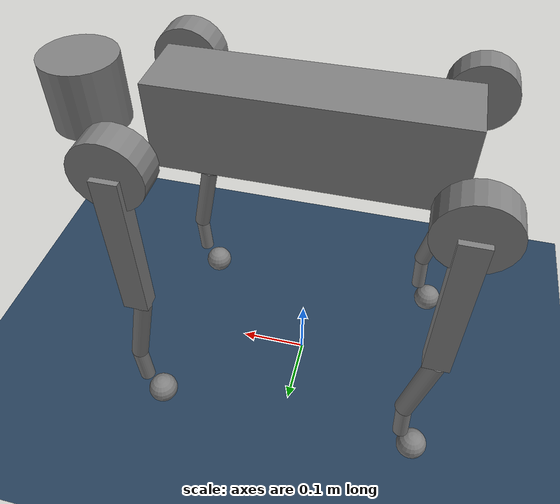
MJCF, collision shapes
<mujoco model="go2 scene">
  <include file="go2.xml"/>

  <statistic center="0 0 0.1" extent="0.8"/>

  <visual>
    <headlight diffuse="0.6 0.6 0.6" ambient="0.3 0.3 0.3" specular="0 0 0"/>
    <rgba haze="0.15 0.25 0.35 1"/>
    <global azimuth="-130" elevation="-20"/>
  </visual>

  <asset>
    <texture type="skybox" builtin="gradient" rgb1="0.3 0.5 0.7" rgb2="0 0 0" width="512" height="3072"/>
    <texture type="2d" name="groundplane" builtin="checker" mark="edge" rgb1="0.2 0.3 0.4" rgb2="0.1 0.2 0.3"
      markrgb="0.8 0.8 0.8" width="300" height="300"/>
    <material name="groundplane" texture="groundplane" texuniform="true" texrepeat="5 5" reflectance="0.2"/>
  </asset>

  <worldbody>
    <light pos="0 0 1.5" dir="0 0 -1" directional="true"/>
    <geom name="floor" size="0 0 0.05" type="plane" material="groundplane"/>
  </worldbody>

  <sensor>
    <contact name="FL_foot_contact" geom1="floor" geom2="FL" data="found" num="1" reduce="mindist"/>
    <contact name="FR_foot_contact" geom1="floor" geom2="FR" data="found" num="1" reduce="mindist"/>
    <contact name="RL_foot_contact" geom1="floor" geom2="RL" data="found" num="1" reduce="mindist"/>
    <contact name="RR_foot_contact" geom1="floor" geom2="RR" data="found" num="1" reduce="mindist"/>
    <!-- base -->
    <contact name="base1_contact" geom1="floor" geom2="base1" data="found" num="1" reduce="mindist"/>
    <contact name="base2_contact" geom1="floor" geom2="base2" data="found" num="1" reduce="mindist"/>
    <!-- hip -->
    <contact name="FL_hip_contact" geom1="floor" geom2="FL_hip_geom" data="found" num="1" reduce="mindist"/>
    <contact name="FR_hip_contact" geom1="floor" geom2="FR_hip_geom" data="found" num="1" reduce="mindist"/>
    <contact name="RL_hip_contact" geom1="floor" geom2="RL_hip_geom" data="found" num="1" reduce="mindist"/>
    <contact name="RR_hip_contact" geom1="floor" geom2="RR_hip_geom" data="found" num="1" reduce="mindist"/>
    <!-- thigh -->
    <contact name="FL_thigh_contact" geom1="floor" geom2="FL_thigh_geom" data="found" num="1" reduce="mindist"/>
    <contact name="FR_thigh_contact" geom1="floor" geom2="FR_thigh_geom" data="found" num="1" reduce="mindist"/>
    <contact name="RL_thigh_contact" geom1="floor" geom2="RL_thigh_geom" data="found" num="1" reduce="mindist"/>
    <contact name="RR_thigh_contact" geom1="floor" geom2="RR_thigh_geom" data="found" num="1" reduce="mindist"/>
    <!-- calf -->
    <contact name="FL_calf_contact1" geom1="floor" geom2="FL_calf_geom1" data="found" num="1" reduce="mindist"/>
    <contact name="FR_calf_contact1" geom1="floor" geom2="FR_calf_geom1" data="found" num="1" reduce="mindist"/>
    <contact name="RL_calf_contact1" geom1="floor" geom2="RL_calf_geom1" data="found" num="1" reduce="mindist"/>
    <contact name="RR_calf_contact1" geom1="floor" geom2="RR_calf_geom1" data="found" num="1" reduce="mindist"/>

    <contact name="FL_calf_contact2" geom1="floor" geom2="FL_calf_geom2" data="found" num="1" reduce="mindist"/>
    <contact name="FR_calf_contact2" geom1="floor" geom2="FR_calf_geom2" data="found" num="1" reduce="mindist"/>
    <contact name="RL_calf_contact2" geom1="floor" geom2="RL_calf_geom2" data="found" num="1" reduce="mindist"/>
    <contact name="RR_calf_contact2" geom1="floor" geom2="RR_calf_geom2" data="found" num="1" reduce="mindist"/>
  </sensor>

</mujoco>

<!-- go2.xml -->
<mujoco model="go2">
  <compiler angle="radian" meshdir="assets" autolimits="true"/>

  <option cone="elliptic" impratio="100" timestep="0.02"/>

  <default>
    <default class="go2">
      <geom friction="0.6" margin="0.001" condim="1"/>
      <joint axis="0 1 0" damping="0.5" armature="0.01" frictionloss="0.2"/>
      <position forcerange="-23.7 23.7" kp="35"/>
      <default class="abduction">
        <joint axis="1 0 0" range="-1.0472 1.0472"/>
      </default>
      <default class="hip">
        <default class="front_hip">
          <joint range="-1.5708 3.4907"/>
        </default>
        <default class="back_hip">
          <joint range="-0.5236 4.5379"/>
        </default>
      </default>
      <default class="knee">
        <joint range="-2.7227 -0.83776"/>
        <position forcerange="-45.43 45.43"/>
      </default>
      <default class="visual">
        <geom type="mesh" contype="0" conaffinity="0" group="2"/>
      </default>
      <default class="collision">
        <geom group="3"  contype="1" conaffinity="2"/>
        <default class="foot">
          <geom size="0.022" pos="-0.002 0 -0.213" priority="1" condim="6"
            friction="0.4 0.02 0.01"/>
        </default>
      </default>
    </default>
  </default>

  <asset>
    <material name="metal" rgba=".9 .95 .95 1"/>
    <material name="black" rgba="0 0 0 1"/>
    <material name="white" rgba="1 1 1 1"/>
    <material name="gray" rgba="0.671705 0.692426 0.774270 1"/>

    <mesh file="base_0.obj"/>
    <mesh file="base_1.obj"/>
    <mesh file="base_2.obj"/>
    <mesh file="base_3.obj"/>
    <mesh file="base_4.obj"/>
    <mesh file="hip_0.obj"/>
    <mesh file="hip_1.obj"/>
    <mesh file="thigh_0.obj"/>
    <mesh file="thigh_1.obj"/>
    <mesh file="thigh_mirror_0.obj"/>
    <mesh file="thigh_mirror_1.obj"/>
    <mesh file="calf_0.obj"/>
    <mesh file="calf_1.obj"/>
    <mesh file="calf_mirror_0.obj"/>
    <mesh file="calf_mirror_1.obj"/>
    <mesh file="foot.obj"/>
  </asset>

  <worldbody>
    <body name="base" pos="0 0 0.445" childclass="go2">
      <inertial pos="0.021112 0 -0.005366" quat="-0.000543471 0.713435 -0.00173769 0.700719" mass="6.921"
        diaginertia="0.107027 0.0980771 0.0244531"/>
      <freejoint/>
      <geom mesh="base_0" material="black" class="visual"/>
      <geom mesh="base_1" material="black" class="visual"/>
      <geom mesh="base_2" material="black" class="visual"/>
      <geom mesh="base_3" material="white" class="visual"/>
      <geom mesh="base_4" material="gray" class="visual"/>
      <geom name="base1" size="0.1881 0.04675 0.057" type="box" class="collision"/>
      <geom name="base2" size="0.05 0.045" pos="0.285 0 0.01" type="cylinder" class="collision"/>
      <site name="imu" pos="-0.02557 0 0.04232"/>
      <body name="FL_hip" pos="0.1934 0.0465 0">
        <inertial pos="-0.0054 0.00194 -0.000105" quat="0.497014 0.499245 0.505462 0.498237" mass="0.678"
          diaginertia="0.00088403 0.000596003 0.000479967"/>
        <joint name="FL_hip_joint" class="abduction"/>
        <geom mesh="hip_0" material="metal" class="visual"/>
        <geom mesh="hip_1" material="gray" class="visual"/>
        <geom name="FL_hip_geom" size="0.046 0.02" pos="0 0.08 0" quat="1 1 0 0" type="cylinder" class="collision"/>
        <body name="FL_thigh" pos="0 0.0955 0">
          <inertial pos="-0.00374 -0.0223 -0.0327" quat="0.829533 0.0847635 -0.0200632 0.551623" mass="1.152"
            diaginertia="0.00594973 0.00584149 0.000878787"/>
          <joint name="FL_thigh_joint" class="front_hip"/>
          <geom mesh="thigh_0" material="metal" class="visual"/>
          <geom mesh="thigh_1" material="gray" class="visual"/>
          <geom name="FL_thigh_geom" size="0.1065 0.01225 0.017" pos="0 0 -0.1065" quat="0.707107 0 0.707107 0" type="box" class="collision"/>
          <body name="FL_calf" pos="0 0 -0.213">
            <inertial pos="0.00629595 -0.000622121 -0.141417" quat="0.710672 0.00154099 -0.00450087 0.703508"
              mass="0.241352" diaginertia="0.0014901 0.00146356 5.31397e-05"/>
            <joint name="FL_calf_joint" class="knee"/>
            <geom mesh="calf_0" material="gray" class="visual"/>
            <geom mesh="calf_1" material="black" class="visual"/>
            <geom name="FL_calf_geom1" size="0.012 0.06" pos="0.008 0 -0.06" quat="0.994493 0 -0.104807 0" type="cylinder" class="collision"/>
            <geom name="FL_calf_geom2" size="0.011 0.0325" pos="0.02 0 -0.148" quat="0.999688 0 0.0249974 0" type="cylinder" class="collision"/>
            <geom pos="0 0 -0.213" mesh="foot" class="visual" material="black"/>
            <geom name="FL" class="foot"/>
          </body>
        </body>
      </body>
      <body name="FR_hip" pos="0.1934 -0.0465 0">
        <inertial pos="-0.0054 -0.00194 -0.000105" quat="0.498237 0.505462 0.499245 0.497014" mass="0.678"
          diaginertia="0.00088403 0.000596003 0.000479967"/>
        <joint name="FR_hip_joint" class="abduction"/>
        <geom mesh="hip_0" material="metal" class="visual" quat="4.63268e-05 1 0 0"/>
        <geom mesh="hip_1" material="gray" class="visual" quat="4.63268e-05 1 0 0"/>
        <geom name="FR_hip_geom" size="0.046 0.02" pos="0 -0.08 0" quat="0.707107 0.707107 0 0" type="cylinder" class="collision"/>
        <body name="FR_thigh" pos="0 -0.0955 0">
          <inertial pos="-0.00374 0.0223 -0.0327" quat="0.551623 -0.0200632 0.0847635 0.829533" mass="1.152"
            diaginertia="0.00594973 0.00584149 0.000878787"/>
          <joint name="FR_thigh_joint" class="front_hip"/>
          <geom mesh="thigh_mirror_0" material="metal" class="visual"/>
          <geom mesh="thigh_mirror_1" material="gray" class="visual"/>
          <geom name="FR_thigh_geom" size="0.1065 0.01225 0.017" pos="0 0 -0.1065" quat="0.707107 0 0.707107 0" type="box" class="collision"/>
          <body name="FR_calf" pos="0 0 -0.213">
            <inertial pos="0.00629595 0.000622121 -0.141417" quat="0.703508 -0.00450087 0.00154099 0.710672"
              mass="0.241352" diaginertia="0.0014901 0.00146356 5.31397e-05"/>
            <joint name="FR_calf_joint" class="knee"/>
            <geom mesh="calf_mirror_0" material="gray" class="visual"/>
            <geom mesh="calf_mirror_1" material="black" class="visual"/>
            <geom name="FR_calf_geom1" size="0.013 0.06" pos="0.01 0 -0.06" quat="0.995004 0 -0.0998334 0" type="cylinder" class="collision"/>
            <geom name="FR_calf_geom2" size="0.011 0.0325" pos="0.02 0 -0.148" quat="0.999688 0 0.0249974 0" type="cylinder" class="collision"/>
            <geom pos="0 0 -0.213" mesh="foot" class="visual" material="black"/>
            <geom name="FR" class="foot"/>
          </body>
        </body>
      </body>
      <body name="RL_hip" pos="-0.1934 0.0465 0">
        <inertial pos="0.0054 0.00194 -0.000105" quat="0.505462 0.498237 0.497014 0.499245" mass="0.678"
          diaginertia="0.00088403 0.000596003 0.000479967"/>
        <joint name="RL_hip_joint" class="abduction"/>
        <geom mesh="hip_0" material="metal" class="visual" quat="4.63268e-05 0 1 0"/>
        <geom mesh="hip_1" material="gray" class="visual" quat="4.63268e-05 0 1 0"/>
        <geom name="RL_hip_geom" size="0.046 0.02" pos="0 0.08 0" quat="0.707107 0.707107 0 0" type="cylinder" class="collision"/>
        <body name="RL_thigh" pos="0 0.0955 0">
          <inertial pos="-0.00374 -0.0223 -0.0327" quat="0.829533 0.0847635 -0.0200632 0.551623" mass="1.152"
            diaginertia="0.00594973 0.00584149 0.000878787"/>
          <joint name="RL_thigh_joint" class="back_hip"/>
          <geom mesh="thigh_0" material="metal" class="visual"/>
          <geom mesh="thigh_1" material="gray" class="visual"/>
          <geom name="RL_thigh_geom" size="0.1065 0.01225 0.017" pos="0 0 -0.1065" quat="0.707107 0 0.707107 0" type="box" class="collision"/>
          <body name="RL_calf" pos="0 0 -0.213">
            <inertial pos="0.00629595 -0.000622121 -0.141417" quat="0.710672 0.00154099 -0.00450087 0.703508"
              mass="0.241352" diaginertia="0.0014901 0.00146356 5.31397e-05"/>
            <joint name="RL_calf_joint" class="knee"/>
            <geom mesh="calf_0" material="gray" class="visual"/>
            <geom mesh="calf_1" material="black" class="visual"/>
            <geom name="RL_calf_geom1" size="0.013 0.06" pos="0.01 0 -0.06" quat="0.995004 0 -0.0998334 0" type="cylinder" class="collision"/>
            <geom name="RL_calf_geom2" size="0.011 0.0325" pos="0.02 0 -0.148" quat="0.999688 0 0.0249974 0" type="cylinder" class="collision"/>
            <geom pos="0 0 -0.213" mesh="foot" class="visual" material="black"/>
            <geom name="RL" class="foot"/>
          </body>
        </body>
      </body>
      <body name="RR_hip" pos="-0.1934 -0.0465 0">
        <inertial pos="0.0054 -0.00194 -0.000105" quat="0.499245 0.497014 0.498237 0.505462" mass="0.678"
          diaginertia="0.00088403 0.000596003 0.000479967"/>
        <joint name="RR_hip_joint" class="abduction"/>
        <geom mesh="hip_0" material="metal" class="visual" quat="2.14617e-09 4.63268e-05 4.63268e-05 -1"/>
        <geom mesh="hip_1" material="gray" class="visual" quat="2.14617e-09 4.63268e-05 4.63268e-05 -1"/>
        <geom name="RR_hip_geom" size="0.046 0.02" pos="0 -0.08 0" quat="0.707107 0.707107 0 0" type="cylinder" class="collision"/>
        <body name="RR_thigh" pos="0 -0.0955 0">
          <inertial pos="-0.00374 0.0223 -0.0327" quat="0.551623 -0.0200632 0.0847635 0.829533" mass="1.152"
            diaginertia="0.00594973 0.00584149 0.000878787"/>
          <joint name="RR_thigh_joint" class="back_hip"/>
          <geom mesh="thigh_mirror_0" material="metal" class="visual"/>
          <geom mesh="thigh_mirror_1" material="gray" class="visual"/>
          <geom name="RR_thigh_geom" size="0.1065 0.01225 0.017" pos="0 0 -0.1065" quat="0.707107 0 0.707107 0" type="box" class="collision"/>
          <body name="RR_calf" pos="0 0 -0.213">
            <inertial pos="0.00629595 0.000622121 -0.141417" quat="0.703508 -0.00450087 0.00154099 0.710672"
              mass="0.241352" diaginertia="0.0014901 0.00146356 5.31397e-05"/>
            <joint name="RR_calf_joint" class="knee"/>
            <geom mesh="calf_mirror_0" material="gray" class="visual"/>
            <geom mesh="calf_mirror_1" material="black" class="visual"/>
            <geom name="RR_calf_geom1" size="0.013 0.06" pos="0.01 0 -0.06" quat="0.995004 0 -0.0998334 0" type="cylinder" class="collision"/>
            <geom name="RR_calf_geom2" size="0.011 0.0325" pos="0.02 0 -0.148" quat="0.999688 0 0.0249974 0" type="cylinder" class="collision"/>
            <geom pos="0 0 -0.213" mesh="foot" class="visual" material="black"/>
            <geom name="RR" class="foot"/>
          </body>
        </body>
      </body>
    </body>
  </worldbody>

  <actuator>
    <position class="abduction" name="FR_hip" joint="FR_hip_joint"/>
    <position class="hip" name="FR_thigh" joint="FR_thigh_joint"/>
    <position class="knee" name="FR_calf" joint="FR_calf_joint"/>
    <position class="abduction" name="FL_hip" joint="FL_hip_joint"/>
    <position class="hip" name="FL_thigh" joint="FL_thigh_joint"/>
    <position class="knee" name="FL_calf" joint="FL_calf_joint"/>
    <position class="abduction" name="RR_hip" joint="RR_hip_joint"/>
    <position class="hip" name="RR_thigh" joint="RR_thigh_joint"/>
    <position class="knee" name="RR_calf" joint="RR_calf_joint"/>
    <position class="abduction" name="RL_hip" joint="RL_hip_joint"/>
    <position class="hip" name="RL_thigh" joint="RL_thigh_joint"/>
    <position class="knee" name="RL_calf" joint="RL_calf_joint"/>
  </actuator>

  <sensor>

    <gyro site="imu" name="gyro"/>
    <accelerometer site="imu" name="accelerometer"/>
    <velocimeter site="imu" name="local_linvel"/>
    <framezaxis objtype="site" objname="imu" name="upvector"/>

    <framepos objtype="site" objname="imu" name="global_position"/>
    <framelinvel objtype="site" objname="imu" name="global_linvel"/>
    <frameangvel objtype="site" objname="imu" name="global_angvel"/>

    <framepos objtype="geom" objname="FR" name="FR_pos"/>
    <framepos objtype="geom" objname="FL" name="FL_pos"/>
    <framepos objtype="geom" objname="RR" name="RR_pos"/>
    <framepos objtype="geom" objname="RL" name="RL_pos"/>

    <framelinvel objtype="geom" objname="FR" name="FR_vel"/>
    <framelinvel objtype="geom" objname="FL" name="FL_vel"/>
    <framelinvel objtype="geom" objname="RR" name="RR_vel"/>
    <framelinvel objtype="geom" objname="RL" name="RL_vel"/>
  </sensor>

  <keyframe>
    <key name="home" qpos="
        0 0 0.3  1 0 0 0
        0 0.8 -1.5
        0 0.8 -1.5
        0 1 -1.5
        0 1 -1.5"
      ctrl="
        0 0.8 -1.5
        0 0.8 -1.5
        0 1 -1.5
        0 1 -1.5"/>
  </keyframe>

</mujoco>
